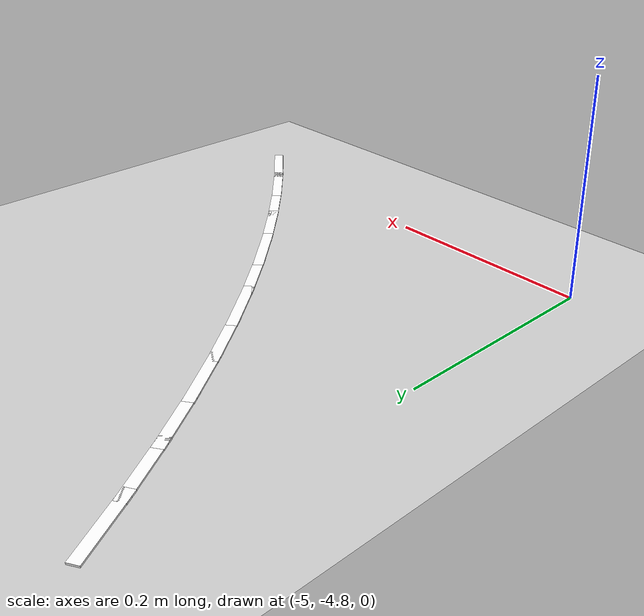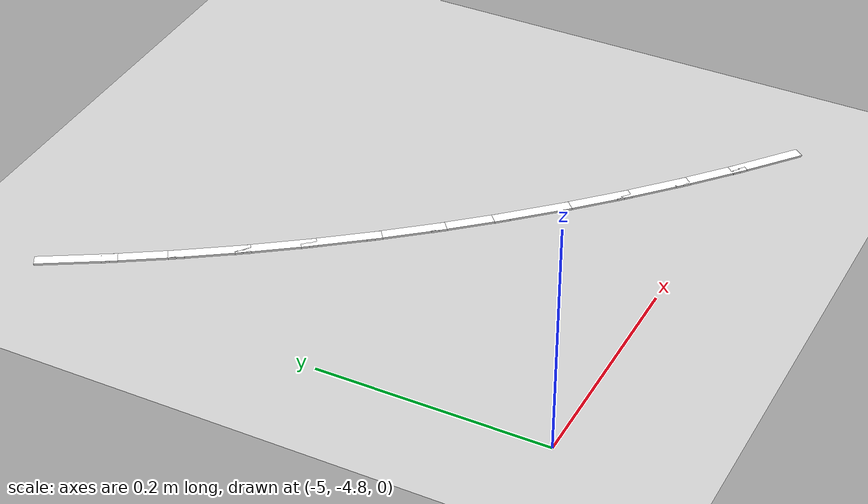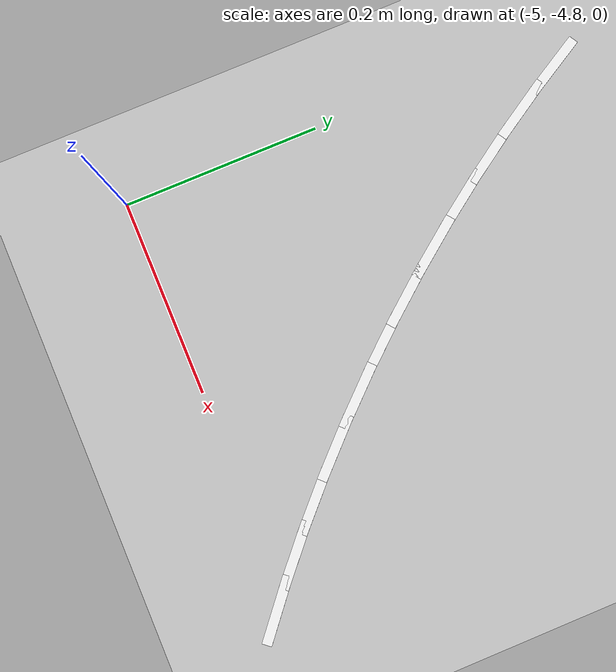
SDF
<sdf version="1.7">
 <world name="default">
  <model name="ground_plane">
   <static>1</static>
   <link name="link">
    <collision name="collision">
     <geometry><plane><normal>0 0 1</normal><size>100 100</size></plane></geometry>
     <surface>
      <contact><collide_bitmask>65535</collide_bitmask></contact>
      <friction><ode><mu>100</mu><mu2>50</mu2></ode></friction>
     </surface>
    </collision>
    <visual name="visual">
     <cast_shadows>0</cast_shadows>
     <geometry><plane><normal>0 0 1</normal><size>100 100</size></plane></geometry>
     <material>
      <script><uri>file://media/materials/scripts/gazebo.material</uri><name>Gazebo/Grey</name></script>
     </material>
    </visual>
   </link>
  </model>
  <model name="lane_line_right_366">
   <static>1</static>
   <link name="link">
    <pose>0 0 -0.004 0 -0 0</pose>
    <visual name="visual">
     <geometry><box><size>0.0681 0.01 0.01</size></box></geometry>
     <material><ambient>1 1 1 1</ambient><diffuse>1 1 1 1</diffuse></material>
    </visual>
    <collision name="collision"><geometry><box><size>0.0681 0.01 0.01</size></box></geometry></collision>
   </link>
   <pose>-4.96751 -4.35776 0 0 0 -1.04185</pose>
  </model>
  <model name="lane_line_right_367">
   <static>1</static>
   <link name="link">
    <pose>0 0 -0.004 0 -0 0</pose>
    <visual name="visual">
     <geometry><box><size>0.0681 0.01 0.01</size></box></geometry>
     <material><ambient>1 1 1 1</ambient><diffuse>1 1 1 1</diffuse></material>
    </visual>
    <collision name="collision"><geometry><box><size>0.0681 0.01 0.01</size></box></geometry></collision>
   </link>
   <pose>-4.93927 -4.40435 0 0 0 -1.0098</pose>
  </model>
  <model name="lane_line_right_368">
   <static>1</static>
   <link name="link">
    <pose>0 0 -0.004 0 -0 0</pose>
    <visual name="visual">
     <geometry><box><size>0.0681 0.01 0.01</size></box></geometry>
     <material><ambient>1 1 1 1</ambient><diffuse>1 1 1 1</diffuse></material>
    </visual>
    <collision name="collision"><geometry><box><size>0.0681 0.01 0.01</size></box></geometry></collision>
   </link>
   <pose>-4.90954 -4.45002 0 0 0 -0.977741</pose>
  </model>
  <model name="lane_line_right_369">
   <static>1</static>
   <link name="link">
    <pose>0 0 -0.004 0 -0 0</pose>
    <visual name="visual">
     <geometry><box><size>0.0681 0.01 0.01</size></box></geometry>
     <material><ambient>1 1 1 1</ambient><diffuse>1 1 1 1</diffuse></material>
    </visual>
    <collision name="collision"><geometry><box><size>0.0681 0.01 0.01</size></box></geometry></collision>
   </link>
   <pose>-4.87837 -4.49471 0 0 0 -0.945684</pose>
  </model>
  <model name="lane_line_right_370">
   <static>1</static>
   <link name="link">
    <pose>0 0 -0.004 0 -0 0</pose>
    <visual name="visual">
     <geometry><box><size>0.0681 0.01 0.01</size></box></geometry>
     <material><ambient>1 1 1 1</ambient><diffuse>1 1 1 1</diffuse></material>
    </visual>
    <collision name="collision"><geometry><box><size>0.0681 0.01 0.01</size></box></geometry></collision>
   </link>
   <pose>-4.84578 -4.53838 0 0 0 -0.913626</pose>
  </model>
  <model name="lane_line_right_371">
   <static>1</static>
   <link name="link">
    <pose>0 0 -0.004 0 -0 0</pose>
    <visual name="visual">
     <geometry><box><size>0.0681 0.01 0.01</size></box></geometry>
     <material><ambient>1 1 1 1</ambient><diffuse>1 1 1 1</diffuse></material>
    </visual>
    <collision name="collision"><geometry><box><size>0.0681 0.01 0.01</size></box></geometry></collision>
   </link>
   <pose>-4.81181 -4.58098 0 0 0 -0.881569</pose>
  </model>
  <model name="lane_line_right_372">
   <static>1</static>
   <link name="link">
    <pose>0 0 -0.004 0 -0 0</pose>
    <visual name="visual">
     <geometry><box><size>0.0681 0.01 0.01</size></box></geometry>
     <material><ambient>1 1 1 1</ambient><diffuse>1 1 1 1</diffuse></material>
    </visual>
    <collision name="collision"><geometry><box><size>0.0681 0.01 0.01</size></box></geometry></collision>
   </link>
   <pose>-4.77648 -4.62247 0 0 0 -0.849512</pose>
  </model>
  <model name="lane_line_right_373">
   <static>1</static>
   <link name="link">
    <pose>0 0 -0.004 0 -0 0</pose>
    <visual name="visual">
     <geometry><box><size>0.0681 0.01 0.01</size></box></geometry>
     <material><ambient>1 1 1 1</ambient><diffuse>1 1 1 1</diffuse></material>
    </visual>
    <collision name="collision"><geometry><box><size>0.0681 0.01 0.01</size></box></geometry></collision>
   </link>
   <pose>-4.73985 -4.6628 0 0 0 -0.817455</pose>
  </model>
  <model name="lane_line_right_374">
   <static>1</static>
   <link name="link">
    <pose>0 0 -0.004 0 -0 0</pose>
    <visual name="visual">
     <geometry><box><size>0.0681 0.01 0.01</size></box></geometry>
     <material><ambient>1 1 1 1</ambient><diffuse>1 1 1 1</diffuse></material>
    </visual>
    <collision name="collision"><geometry><box><size>0.0681 0.01 0.01</size></box></geometry></collision>
   </link>
   <pose>-4.70195 -4.70195 0 0 0 -0.785398</pose>
  </model>
  <model name="lane_line_right_375">
   <static>1</static>
   <link name="link">
    <pose>0 0 -0.004 0 -0 0</pose>
    <visual name="visual">
     <geometry><box><size>0.0681 0.01 0.01</size></box></geometry>
     <material><ambient>1 1 1 1</ambient><diffuse>1 1 1 1</diffuse></material>
    </visual>
    <collision name="collision"><geometry><box><size>0.0681 0.01 0.01</size></box></geometry></collision>
   </link>
   <pose>-4.6628 -4.73985 0 0 0 -0.753341</pose>
  </model>
  <model name="lane_line_right_376">
   <static>1</static>
   <link name="link">
    <pose>0 0 -0.004 0 -0 0</pose>
    <visual name="visual">
     <geometry><box><size>0.0681 0.01 0.01</size></box></geometry>
     <material><ambient>1 1 1 1</ambient><diffuse>1 1 1 1</diffuse></material>
    </visual>
    <collision name="collision"><geometry><box><size>0.0681 0.01 0.01</size></box></geometry></collision>
   </link>
   <pose>-4.62247 -4.77648 0 0 0 -0.721284</pose>
  </model>
  <model name="lane_line_right_377">
   <static>1</static>
   <link name="link">
    <pose>0 0 -0.004 0 -0 0</pose>
    <visual name="visual">
     <geometry><box><size>0.0681 0.01 0.01</size></box></geometry>
     <material><ambient>1 1 1 1</ambient><diffuse>1 1 1 1</diffuse></material>
    </visual>
    <collision name="collision"><geometry><box><size>0.0681 0.01 0.01</size></box></geometry></collision>
   </link>
   <pose>-4.58098 -4.81181 0 0 0 -0.689227</pose>
  </model>
 </world>
</sdf>
